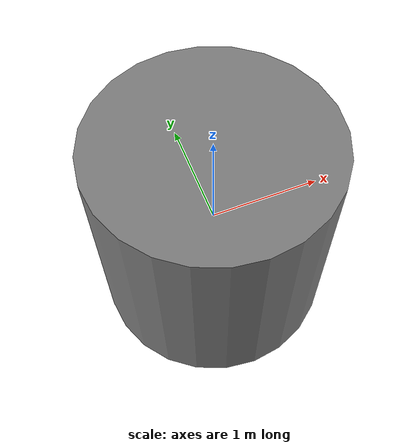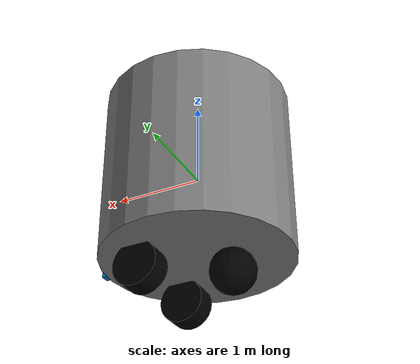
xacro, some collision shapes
<?xml version="1.0" encoding="utf-8"?>
<!-- |    This document was autogenerated by xacro from ../ex00/robot.urdf             | -->
<!-- |    EDITING THIS FILE BY HAND IS NOT RECOMMENDED                                 | -->

<robot name="robot" xmlns:xacro="http://www.ros.org/wiki/xacro">
  <xacro:include filename="$(find robot_diff_drive)/urdf/robot.gazebo.xacro"/>

  <material name="gray">
    <color rgba="0.5 0.5 0.5 1"/>
  </material>

  <material name="black">
    <color rgba="0 0 0 1"/>
  </material>

  <link name="base_link">
    <visual>
      <geometry>
        <cylinder length="2.0" radius="1.05"/>
      </geometry>
      <material name="gray"/>
    </visual>
    <collision>
      <geometry>
        <cylinder length="2.0" radius="1.05"/>
      </geometry>
    </collision>
    <inertial>
      <mass value="20"/>
      <inertia ixx="12.1792" ixy="0.0" ixz="0.0" iyy="12.1792" iyz="0.0" izz="11.025"/>
    </inertial>
  </link>

  <link name="right_wheel">
    <visual>
      <geometry>
        <cylinder length="0.25" radius="0.25"/>
      </geometry>
      <origin rpy="1.57075 1.57075 0"/>
      <material name="black"/>
    </visual>
    <collision>
      <geometry>
        <cylinder length="0.25" radius="0.25"/>
      </geometry>
      <origin rpy="1.57075 1.57075 0"/>
    </collision>
    <inertial>
      <mu1 value="2.0"/>
      <mu2 value="1.0"/>
      <kp value="10000000.0" />
      <kd value="1.0" />
      <mass value="4"/>
      <inertia ixx="0.0833" ixy="0.0" ixz="0.0" iyy="0.0833" iyz="0.0" izz="0.125"/>
    </inertial>
  </link>

  <joint name="right_wheel_to_base_link" type="continuous">
    <parent link="base_link"/>
    <child link="right_wheel"/>
    <axis xyz="0 1 0"/>
    <origin xyz="0.4 0.5 -1.2"/>
  </joint>

  <transmission name="right_wheel_trans">
    <type>transmission_interface/SimpleTransmission</type>
    <actuator name="right_wheel_motor">
      <mechanicalReduction>1</mechanicalReduction>
    </actuator>
    <joint name="right_wheel_to_base_link">
      <hardwareInterface>hardware_interface/VelocityJointInterface</hardwareInterface>
    </joint>
  </transmission>

  <gazebo reference="right_wheel">
    <mu1 value="2.0"/>
    <mu2 value="1.0"/>
    <kp value="10000000.0" />
    <kd value="1.0" />
    <material>Gazebo/Grey</material>
  </gazebo>

  <link name="left_wheel">
    <visual>
      <geometry>
        <cylinder length="0.25" radius="0.25"/>
      </geometry>
      <origin rpy="1.57075 1.57075 0"/>
      <material name="black"/>
    </visual>
    <collision>
      <geometry>
        <cylinder length="0.25" radius="0.25"/>
      </geometry>
      <origin rpy="1.57075 1.57075 0"/>
    </collision>
    <inertial>
      <mu1 value="2.0"/>
      <mu2 value="1.0"/>
      <kp value="10000000.0" />
      <kd value="1.0" />
      <mass value="4"/>
      <inertia ixx="0.0833" ixy="0.0" ixz="0.0" iyy="0.0833" iyz="0.0" izz="0.125"/>
    </inertial>
  </link>

  <joint name="left_wheel_to_base_link" type="continuous">
    <parent link="base_link"/>
    <child link="left_wheel"/>
    <axis xyz="0 1 0"/>
    <origin xyz="0.4 -0.5 -1.2"/>
  </joint>

  <transmission name="left_wheel_trans">
    <type>transmission_interface/SimpleTransmission</type>
    <actuator name="left_wheel_motor">
      <mechanicalReduction>1</mechanicalReduction>
    </actuator>
    <joint name="left_wheel_to_base_link">
      <hardwareInterface>hardware_interface/VelocityJointInterface</hardwareInterface>
    </joint>
  </transmission>

  <gazebo reference="left_wheel">
    <mu1 value="2.0"/>
    <mu2 value="1.0"/>
    <kp value="10000000.0" />
    <kd value="1.0" />
    <material>Gazebo/Grey</material>
  </gazebo>

  <link name="custer">
    <visual>
      <geometry>
        <sphere radius="0.25"/>
      </geometry>
      <origin rpy="0 0 0"/>
      <material name="black"/>
    </visual>
    <collision>
      <geometry>
        <sphere radius="0.25"/>
      </geometry>
    </collision>
    <inertial>
      <mu1 value="0.01"/>
      <mu2 value="0.01"/>
      <kp value="10000000.0" />
      <kd value="1.0" />
      <mass value="5"/>
      <inertia ixx="0.125" ixy="0.0" ixz="0.0" iyy="0.125" iyz="0.0" izz="0.125"/>
    </inertial>
  </link>

  <joint name="custer_to_base_link" type="fixed">
    <parent link="base_link"/>
    <child link="custer"/>
    <origin xyz="-0.4 0.0 -1.2"/>
    <limit effort="1000" velocity="10"/>
  </joint>

  <transmission name="custer_to_base_link_trans">
    <type>transmission_interface/SimpleTransmission</type>
    <actuator name="custer_to_base_link_motor">
      <mechanicalReduction>1</mechanicalReduction>
    </actuator>
    <joint name="custer_to_base_link">
      <hardwareInterface>hardware_interface/PositionJointInterface</hardwareInterface>
    </joint>
  </transmission>

  <gazebo reference="custer">
    <mu1 value="0.01"/>
    <mu2 value="0.01"/>
    <kp value="10000000.0" />
    <kd value="1.0" />
    <material>Gazebo/Grey</material>
  </gazebo>

  <!-- Hokuyo LiDAR -->
  <link name="hokuyo_link">
    <visual>
      <geometry>
        <mesh filename="package://robot_diff_drive/meshes/hokuyo.dae"/>
      </geometry>
    </visual>
    <collision>
      <geometry>
        <box size="0.1 0.1 0.1"/>
      </geometry>
    </collision>
    <inertial>
      <mass value="1e-5"/>
      <inertia ixx="1e-6" ixy="0.0" ixz="0.0" iyy="1e-6" iyz="0.0" izz="1e-6"/>
    </inertial>
  </link>

  <joint name="hokuyo_joint" type="fixed">
    <origin xyz="1.1 0 -0.9"/>
    <parent link="base_link"/>
    <child link="hokuyo_link"/>
  </joint>

  <gazebo reference="hokuyo_link">
    <sensor type="gpu_ray" name="head_hokuyo_sensor">
      <pose>0 0 0 0 0 0</pose>
      <visualize>false</visualize>
      <update_rate>40</update_rate>
      <ray>
        <scan>
          <horizontal>
            <samples>720</samples>
            <resolution>1</resolution>
            <min_angle>-1.570796</min_angle>
            <max_angle>1.570796</max_angle>
          </horizontal>
        </scan>
        <range>
          <min>0.1</min>
          <max>30.0</max>
          <resolution>0.01</resolution>
        </range>
        <noise>
          <mean>0.0</mean>
          <stddev>0.01</stddev>
        </noise>
      </ray>
      <plugin name="gazebo_ros_head_hokuyo_controller" filename="libgazebo_ros_gpu_laser.so">
        <topicName>/laser/scan</topicName>
        <frameName>hokuyo_link</frameName>
      </plugin>
    </sensor>
  </gazebo>

  <!-- Gazebo plugin for ROS Control -->
  <gazebo>
    <plugin name="gazebo_ros_control" filename="libgazebo_ros_control.so">
      <robotNamespace>/</robotNamespace>
    </plugin>
  </gazebo>
</robot>
